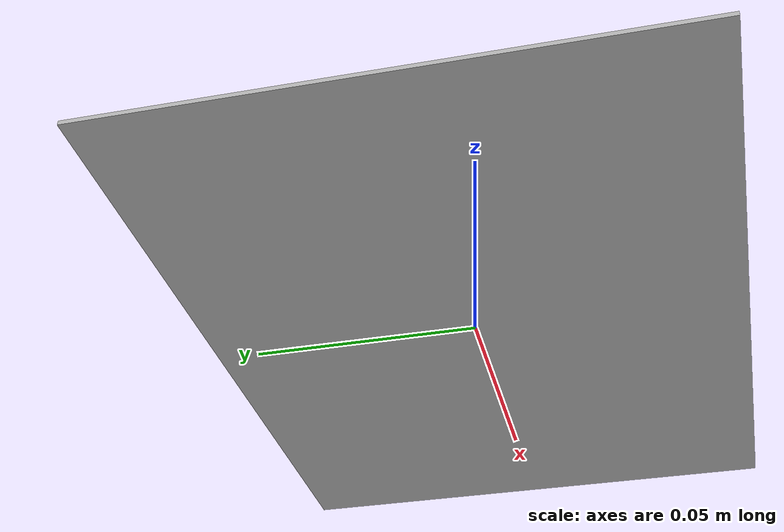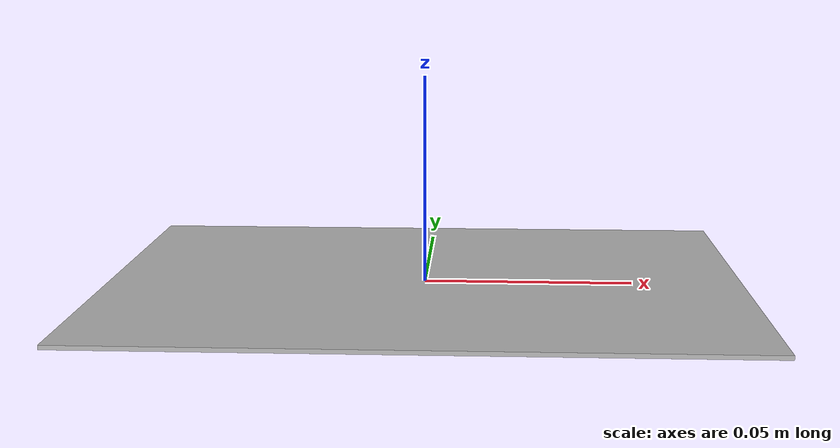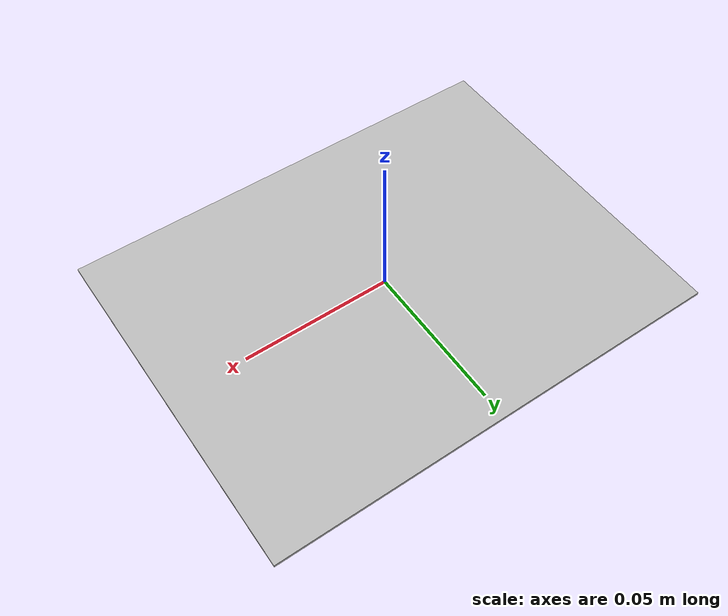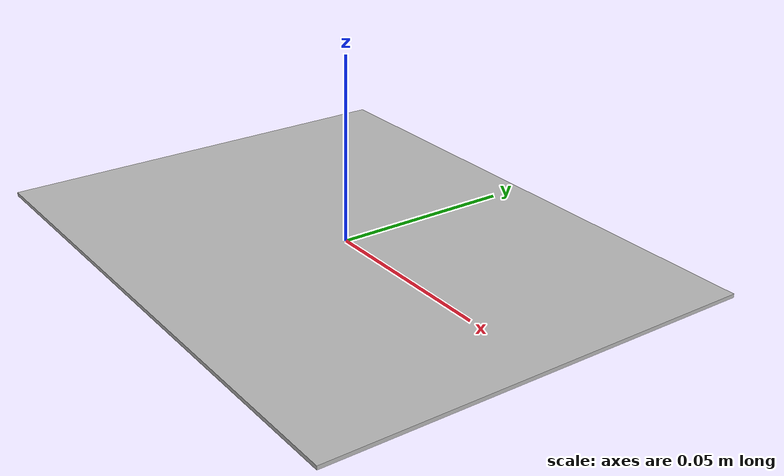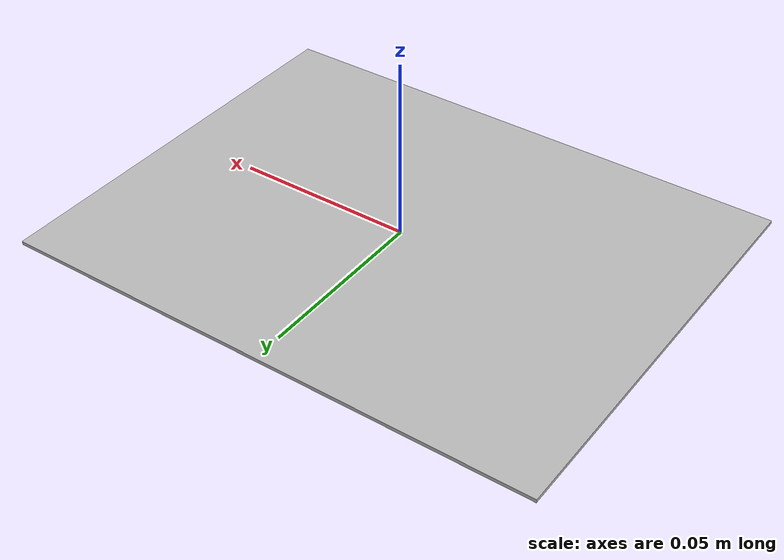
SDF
<?xml version='1.0'?>
<sdf version='1.4'>
        <model name="atags4_11">
        <static>true</static>
        <link name='link'>

            <collision name ='collision'>
                <geometry>
                    <box>
                        <size>0.15275 0.11825 .001</size>
                    </box>
                </geometry>
            </collision>
            <visual name='visual'>
                <geometry>
                    <box>
                        <size>0.15275 0.11825 .001</size>
                    </box>
                </geometry>

                <material>
                    <script>
                        <uri>model://atags4_11/materials/scripts</uri>
                        <uri>model://atags4_11/materials/textures</uri>
                        <name>atags4_11/Diffuse</name>
                    </script>
                </material>
            </visual>
        </link>
    </model>
</sdf>
